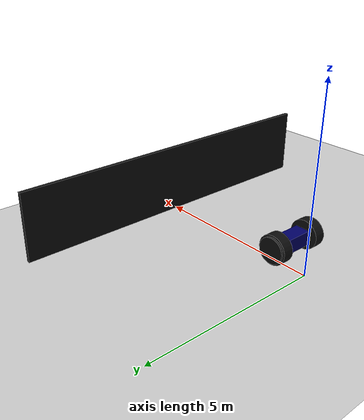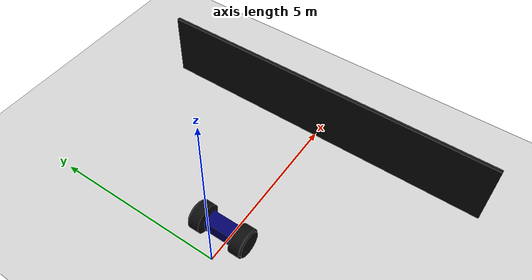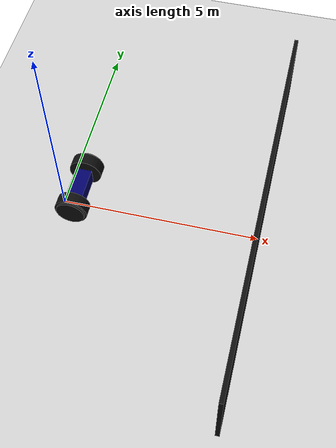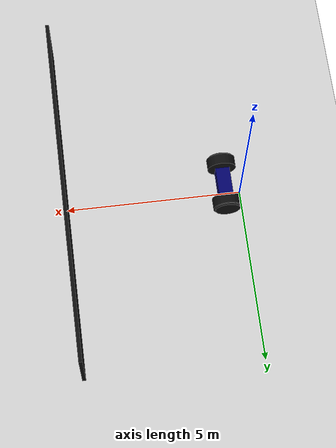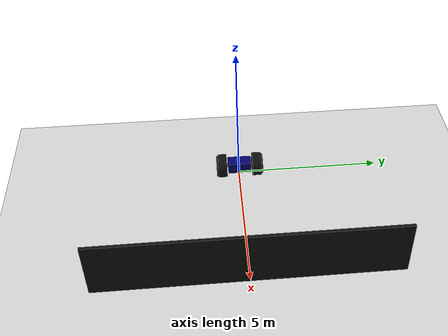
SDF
<sdf version="1.7">
  <world name="default">
    <plugin filename="libignition-gazebo-contact-system.so" name="ignition::gazebo::systems::Contact"/>

    <gui fullscreen="0">

      <!-- 3D SCENE -->
      <plugin filename="GzScene3D" name="3D View">
        <ignition-gui>
          <title>3D View</title>
          <property type="bool" key="showTitleBar">false</property>
          <property type="string" key="state">docked</property>
        </ignition-gui>

        <engine>ogre2</engine>
        <scene>scene</scene>
        <ambient_light>0.4 0.4 0.4</ambient_light>
        <background_color>0.8 0.8 0.8</background_color>
      </plugin>

      <!-- WORLD CONTROL -->
      <plugin filename="WorldControl" name="World Control">
        <ignition-gui>
          <title>World Control</title>
          <property type="bool" key="showTitleBar">false</property>
          <property type="bool" key="resizable">false</property>
          <property type="double" key="height">72</property>
          <property type="double" key="width">121</property>
          <property type="double" key="z">1</property>

          <property type="string" key="state">floating</property>
          <anchors target="3D View">
            <line own="left" target="left"/>
            <line own="bottom" target="bottom"/>
          </anchors>
        </ignition-gui>

        <play_pause>true</play_pause>
        <step>true</step>
        <start_paused>true</start_paused>
        <service>world/tubes_world/control</service>
        <stats_topic>world/tubes_world/stats</stats_topic>
      </plugin>

      <!-- WORLD STATS -->
      <plugin filename="WorldStats" name="World Stats">
        <ignition-gui>
          <title>World Stats</title>
          <property type="bool" key="showTitleBar">false</property>
          <property type="bool" key="resizable">false</property>
          <property type="double" key="height">110</property>
          <property type="double" key="width">290</property>
          <property type="double" key="z">1</property>

          <property type="string" key="state">floating</property>
          <anchors target="3D View">
            <line own="right" target="right"/>
            <line own="bottom" target="bottom"/>
          </anchors>
        </ignition-gui>

        <sim_time>true</sim_time>
        <real_time>true</real_time>
        <real_time_factor>true</real_time_factor>
        <iterations>true</iterations>
        <topic>world/tubes_world/stats</topic>
      </plugin>

      <plugin filename="EntityTree" name="Entity Tree">
      </plugin>

      <plugin filename="KeyPublisher" name="Key Publisher"/>
    </gui>

    <physics name='1ms' type='ignored'>
      <max_step_size>0.001</max_step_size>
      <real_time_factor>1</real_time_factor>
      <real_time_update_rate>1000</real_time_update_rate>
    </physics>
    <plugin name='gz::sim::systems::Physics' filename='gz-sim-physics-system'/>
    <plugin name='gz::sim::systems::UserCommands' filename='gz-sim-user-commands-system'/>
    <plugin name='gz::sim::systems::SceneBroadcaster' filename='gz-sim-scene-broadcaster-system'/>
    <plugin name='gz::sim::systems::Contact' filename='gz-sim-contact-system'/>
    <gravity>0 0 -9.8000000000000007</gravity>
    <magnetic_field>5.5644999999999998e-06 2.2875799999999999e-05 -4.2388400000000002e-05</magnetic_field>
    <atmosphere type='adiabatic'/>
    <scene>
      <ambient>0.400000006 0.400000006 0.400000006 1</ambient>
      <background>0.699999988 0.699999988 0.699999988 1</background>
      <shadows>true</shadows>
    </scene>

    <light name="sun" type="directional">
        <pose>0 0 10 0 -0.7854 0</pose>
        <diffuse>1.0 1.0 1.0 1.0</diffuse>
        <specular>1.0 1.0 1.0 1.0</specular>
        <attenuation>
            <range>100</range>
            <constant>0.1</constant>
            <linear>0.01</linear>
            <quadratic>0.002</quadratic>
        </attenuation>
        <cast_shadows>true</cast_shadows>
    </light>

    <light name="ambient_light" type="point">
        <pose>0 0 5 0 0 0</pose>
        <diffuse>0.5 0.5 0.5 1.0</diffuse>
        <specular>0.2 0.2 0.2 1.0</specular>
        <attenuation>
            <range>50</range>
            <constant>0.1</constant>
            <linear>0.1</linear>
            <quadratic>0.02</quadratic>
        </attenuation>
        <cast_shadows>false</cast_shadows>
    </light>

    <model name="ground_plane">
      <static>true</static>
      <link name="ground_link">
        <collision name="collision">
          <geometry>
            <plane>
              <normal>0 0 1</normal>
              <size>100 100</size>
            </plane>
          </geometry>
        </collision>
        <visual name="visual">
          <geometry>
            <plane>
              <normal>0 0 1</normal>
              <size>100 100</size>
            </plane>
          </geometry>
          <material>
            <script>
              <uri>file://media/materials/scripts/gazebo.material</uri>
              <name>Gazebo/Grey</name>
            </script>
          </material>
        </visual>
      </link>
    </model>

    <model name="wall">
      <static>true</static>
      <link name="wall_link">
        <collision name="collision">
          <geometry>
            <box>
              <size>0.1 10 2</size>
            </box>
          </geometry>
        </collision>
        <visual name="visual">
          <geometry>
            <box>
              <size>0.1 10 2</size>
            </box>
          </geometry>
          <material>
            <ambient>0.05 0.05 0.05 1</ambient>
            <diffuse>0.05 0.05 0.05 1</diffuse>
            <specular>0.1 0.1 0.1 1</specular>
          </material>
        </visual>

      </link>
      <pose>5 0 1 0 0 0</pose>
    </model>

    <include>
      <uri>/home/ahmrrzz/tubes_sekuro_ws/src/my_robot/models/my_robot/mini_robot.sdf</uri>
      <pose>0 0 0.4 0 0 0</pose>
    </include>

  </world>
</sdf>

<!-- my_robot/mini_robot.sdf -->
<sdf version="1.7">

    <model name="mini_robot">

        <frame name="lidar_frame" attached_to="base_link">
            <pose>0.8 0 0.5 0 0 0</pose>
        </frame>

        <!-- BASE LINK -->
        <link name="base_link">
            <pose relative_to="__model__">0.5 0 0.4 0 0 0</pose>
            <collision name="base_collision">
                <geometry>
                    <box>
                        <size>0.4 0.8 0.4</size>
                    </box>
                </geometry>
            </collision>
            <visual name="base_visual">
                <geometry>
                    <box>
                        <size>0.4 0.8 0.4</size>
                    </box>
                </geometry>
                <material>
                    <ambient>0.0 0.0 0.3 1</ambient>
                    <diffuse>0.0 0.0 0.4 1</diffuse>
                    <specular>0.1 0.1 0.3 1</specular>
                </material>
            </visual>
            <inertial>
                <inertia>
                        <ixx>0.095329</ixx>
                        <ixy>0</ixy>
                        <ixz>0</ixz>
                        <iyy>0.381317</iyy>
                        <iyz>0</iyz>
                        <izz>0.476646</izz>
                </inertia>
            </inertial>

        </link>

        <link name="base_to_left_wheel">
            <pose relative_to="base_link">0 0.4 0 0 0 0</pose>
            <visual name="base_to_left_wheel_visual">
                <geometry>
                    <box>
                        <size>0.1 0.1 0.1</size>
                    </box>
                </geometry>
                <material>
                    <ambient>0.05 0.05 0.05 1</ambient>
                    <diffuse>0.05 0.05 0.05 1</diffuse>
                    <specular>0.1 0.1 0.1 1</specular>
                </material>
            </visual>
            <collision name="base_to_left_wheel_collision">
                <geometry>
                    <box>
                        <size>0.1 0.1 0.1</size>
                    </box>
                </geometry>
            </collision>
            <inertial>
                <inertia>
                    <ixx>0.0001</ixx>
                    <ixy>0</ixy>
                    <ixz>0</ixz>
                    <iyy>0.0001</iyy>
                    <iyz>0</iyz>
                    <izz>0.0001</izz>
                </inertia>
            </inertial>
        </link>

        <link name="base_to_right_wheel">
            <pose relative_to="base_link">0 -0.4 0 0 0 0</pose>
            <visual name="base_to_right_wheel_visual">
                <geometry>
                    <box>
                        <size>0.1 0.1 0.1</size>
                    </box>
                </geometry>
                <material>
                    <ambient>0.05 0.05 0.05 1</ambient>
                    <diffuse>0.05 0.05 0.05 1</diffuse>
                    <specular>0.1 0.1 0.1 1</specular>
                </material>
            </visual>
            <collision name="base_to_right_wheel_collision">
                <geometry>
                    <box>
                        <size>0.1 0.1 0.1</size>
                    </box>
                </geometry>
            </collision>
            <inertial>
                <inertia>
                    <ixx>0.0001</ixx>
                    <ixy>0</ixy>
                    <ixz>0</ixz>
                    <iyy>0.0001</iyy>
                    <iyz>0</iyz>
                    <izz>0.0001</izz>
                </inertia>
            </inertial>
        </link>

        <!-- LEFT WHEELS -->
        <link name="left_wheel_link">
            <pose relative_to="base_link">0 0.6 0 -1.5707 0 0</pose>
            <collision name="left_wheel_collision">
                <geometry>
                    <cylinder>
                        <radius>0.4</radius>
                        <length>0.3</length>
                    </cylinder>
                </geometry>
            </collision>
            <visual name="left_wheel_visual">
                <geometry>
                    <cylinder>
                        <radius>0.4</radius>
                        <length>0.3</length>
                    </cylinder>
                </geometry>
                <material>
                    <ambient>0.05 0.05 0.05 1</ambient>
                    <diffuse>0.05 0.05 0.05 1</diffuse>
                    <specular>0.1 0.1 0.1 1</specular>
                </material>
            </visual>
            <inertial>
                <inertia>
                        <ixx>0.00125</ixx>
                        <ixy>0</ixy>
                        <ixz>0</ixz>
                        <iyy>0.00125</iyy>
                        <iyz>0</iyz>
                        <izz>0.0001</izz>
                </inertia>
            </inertial>
        </link>

        <!-- RIGHT WHEEL -->
        <link name="right_wheel_link">
            <pose relative_to="base_link">0 -0.6 0 -1.5707 0 0</pose>
            <collision name="right_wheel_collision">
                <geometry>
                    <cylinder>
                        <radius>0.4</radius>
                        <length>0.3</length>
                    </cylinder>
                </geometry>
            </collision>
            <visual name="right_wheel_visual">
                <geometry>
                    <cylinder>
                        <radius>0.4</radius>
                        <length>0.3</length>
                    </cylinder>
                </geometry>
                <material>
                    <ambient>0.05 0.05 0.05 1</ambient>
                    <diffuse>0.05 0.05 0.05 1</diffuse>
                    <specular>0.1 0.1 0.1 1</specular>
                </material>
            </visual>
            <inertial>
                <inertia>
                        <ixx>0.00125</ixx>
                        <ixy>0</ixy>
                        <ixz>0</ixz>
                        <iyy>0.00125</iyy>
                        <iyz>0</iyz>
                        <izz>0.0001</izz>
                </inertia>
            </inertial>
        </link>

        <link name="left_wheel_detail_link">
            <pose relative_to="base_link">0 0.75 0 -1.5707 0 0</pose>
            <collision name="left_wheel_detail_collision">
                <geometry>
                    <cylinder>
                        <radius>0.35</radius>
                        <length>0.1</length>
                    </cylinder>
                </geometry>
            </collision>
            <visual name="left_wheel_detail_visual">
                <geometry>
                    <cylinder>
                        <radius>0.35</radius>
                        <length>0.1</length>
                    </cylinder>
                </geometry>
                <material>
                    <ambient>0.05 0.05 0.05 1</ambient>
                    <diffuse>0.05 0.05 0.05 1</diffuse>
                    <specular>0.1 0.1 0.1 1</specular>
                </material>
            </visual>
            <inertial>
                <inertia>
                        <ixx>0.00125</ixx>
                        <ixy>0</ixy>
                        <ixz>0</ixz>
                        <iyy>0.00125</iyy>
                        <iyz>0</iyz>
                        <izz>0.0001</izz>
                </inertia>
            </inertial>
        </link>

        <link name="right_wheel_detail_link">
            <pose relative_to="base_link">0 -0.75 0 -1.5707 0 0</pose>
            <collision name="right_wheel_detail_collision">
                <geometry>
                    <cylinder>
                        <radius>0.35</radius>
                        <length>0.1</length>
                    </cylinder>
                </geometry>
            </collision>
            <visual name="right_wheel_detail_visual">
                <geometry>
                    <cylinder>
                        <radius>0.35</radius>
                        <length>0.1</length>
                    </cylinder>
                </geometry>
                <material>
                    <ambient>0.05 0.05 0.05 1</ambient>
                    <diffuse>0.05 0.05 0.05 1</diffuse>
                    <specular>0.1 0.1 0.1 1</specular>
                </material>
            </visual>
            <inertial>
                <inertia>
                        <ixx>0.00125</ixx>
                        <ixy>0</ixy>
                        <ixz>0</ixz>
                        <iyy>0.00125</iyy>
                        <iyz>0</iyz>
                        <izz>0.0001</izz>
                </inertia>
            </inertial>
        </link>

        <!-- JOINTS -->

        <joint name="base_to_left_wheel_joint" type="fixed">
            <pose relative_to="base_link"/>
            <parent>base_link</parent>
            <child>base_to_left_wheel</child>
        </joint>

        <joint name="base_to_right_wheel_joint" type="fixed">
            <pose relative_to="base_link"/>
            <parent>base_link</parent>
            <child>base_to_right_wheel</child>
        </joint>

        <joint name="left_wheel_joint" type="revolute">
            <pose relative_to="left_wheel_link"/>
            <parent>base_to_left_wheel</parent>
            <child>left_wheel_link</child>
            <axis>
                <xyz>0 0 1</xyz>
                <limit>
                    <lower>-1.79769e+308</lower>
                    <upper>1.79769e+308</upper>
                </limit>
            </axis>
        </joint>

        <joint name="right_wheel_joint" type="revolute">
            <pose relative_to="right_wheel_link"/>
            <parent>base_to_right_wheel</parent>
            <child>right_wheel_link</child>
            <axis>
                <xyz>0 0 1</xyz>
                <limit>
                    <lower>-1.79769e+308</lower>
                    <upper>1.79769e+308</upper>
                </limit>
            </axis>
        </joint>

        <joint name="left_wheel_detail_joint" type="fixed">
            <pose relative_to="left_wheel_link"/>
            <parent>left_wheel_link</parent>
            <child>left_wheel_detail_link</child>
        </joint>

        <joint name="right_wheel_detail_joint" type="fixed">
            <pose relative_to="right_wheel_link"/>
            <parent>right_wheel_link</parent>
            <child>right_wheel_detail_link</child>
        </joint>

        <plugin
            filename="libignition-gazebo-diff-drive-system.so"
            name="ignition::gazebo::systems::DiffDrive">
            <left_joint>left_wheel_joint</left_joint>
            <right_joint>right_wheel_joint</right_joint>
            <wheel_separation>1.2</wheel_separation>
            <wheel_radius>0.4</wheel_radius>
            <odom_publish_frequency>1</odom_publish_frequency>
            <topic>/cmd_vel</topic>
        </plugin>

        <!-- W = MOVE FORWARD -->
        <plugin filename="gz-sim-triggered-publisher-system" name="gz::sim::systems::TriggeredPublisher">
            <input type="gz.msgs.Int32" topic="/keyboard/keypress">
                <match field="data">87</match>
            </input>
            <output type="gz.msgs.Twist" topic="/cmd_vel">
                linear: {x: 2}, angular: {z: 0.0}
            </output>
        </plugin>

        <!-- S = MOVE BACKWARD -->

        <plugin filename="gz-sim-triggered-publisher-system" name="gz::sim::systems::TriggeredPublisher">
            <input type="gz.msgs.Int32" topic="/keyboard/keypress">
                <match field="data">83</match>
            </input>
            <output type="gz.msgs.Twist" topic="/cmd_vel">
                linear: {x: -2}, angular: {z: 0.0}
            </output>
        </plugin>

        <!-- A = TURN LEFT -->
        <plugin filename="gz-sim-triggered-publisher-system" name="gz::sim::systems::TriggeredPublisher">
            <input type="gz.msgs.Int32" topic="/keyboard/keypress">
                <match field="data">65</match>
            </input>
            <output type="gz.msgs.Twist" topic="/cmd_vel">
                linear: {x: 0.0}, angular: {z: 0.5}
            </output>
        </plugin>

        <!-- D = TURN RIGHT -->
        <plugin filename="gz-sim-triggered-publisher-system" name="gz::sim::systems::TriggeredPublisher">
            <input type="gz.msgs.Int32" topic="/keyboard/keypress">
            <match field="data">68</match>
            </input>
            <output type="gz.msgs.Twist" topic="/cmd_vel">
            linear: {x: 0.0}, angular: {z: -0.5}
            </output>
        </plugin>

    </model>
</sdf>
